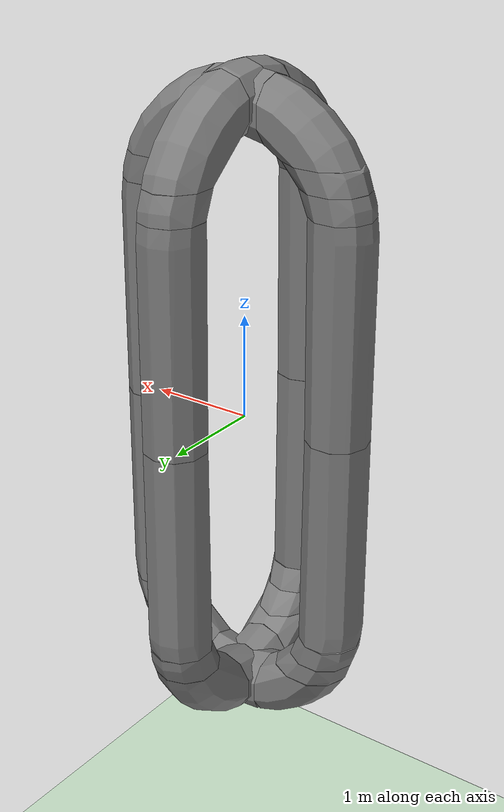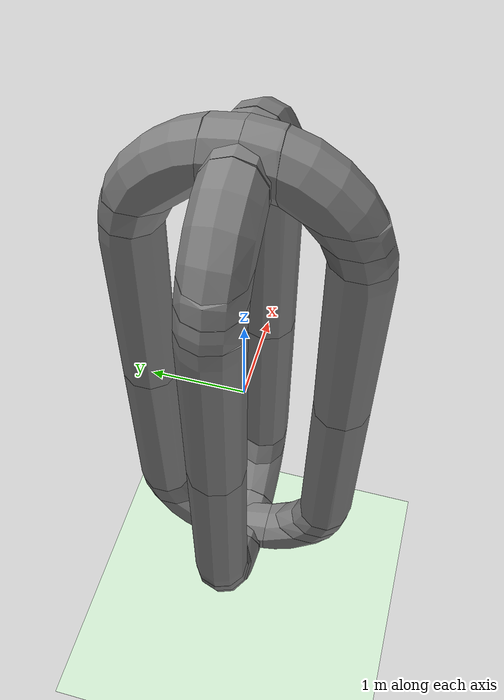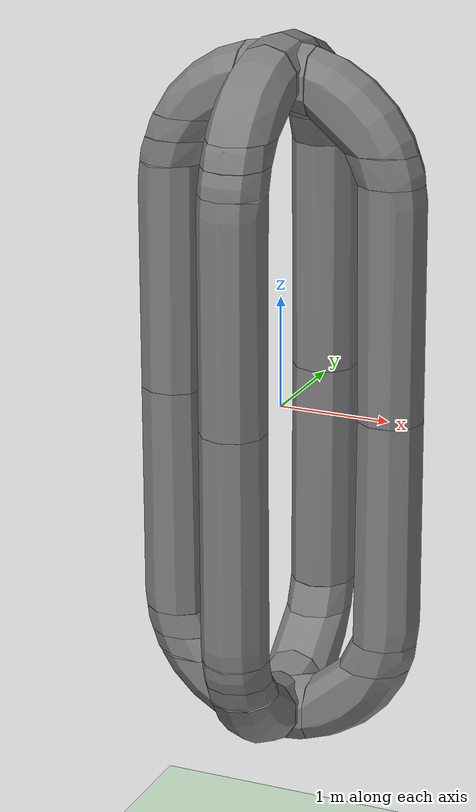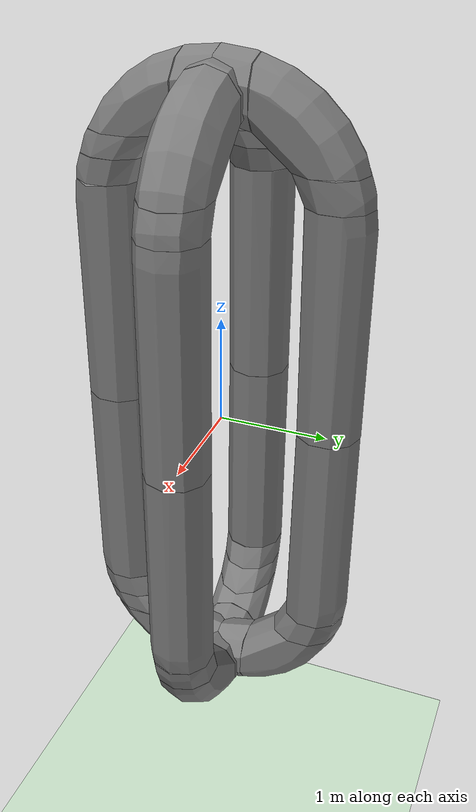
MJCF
<mujoco model="unnamed_model">
  <option timestep="0.01667" integrator="RK4"/>
  <size njmax="10000" nconmax="4000"/>
  <default>
    <default class="/"/>
  </default>
  <asset>
    <mesh name="torus" class="/" file="torus_vhacd2-fcd51a57eb6f9306c5df05297af02341f96004e6.stl"/>
    <mesh name="torus0" class="/" file="convex_0_lab-5ad5a1dada27922ab7aa6d90e5f669d3b0169b27.stl"/>
    <mesh name="torus1" class="/" file="convex_1_lab-b91990515963df7f713443cbdd0c6e6e26523674.stl"/>
    <mesh name="torus2" class="/" file="convex_2_lab-6afbd53704953fb2ccea2e98433aee496033c09c.stl"/>
    <mesh name="torus3" class="/" file="convex_3_lab-34599b5e1e2201f42be2f99e3a9c1d39ff4d4f51.stl"/>
    <mesh name="torus4" class="/" file="convex_4_lab-e42b2bad269f543d276a22bdc799bb36b1142791.stl"/>
    <mesh name="torus5" class="/" file="convex_5_lab-2c0e43f5693051559657a50cddade501db72c649.stl"/>
    <mesh name="torus6" class="/" file="convex_6_lab-72d75dbb87d0d91382d4b558bfde88130c08970e.stl"/>
    <mesh name="torus7" class="/" file="convex_7_lab-5dcb10c25a2016340e0a50dc0c4c1930200c3e91.stl"/>
    <mesh name="torus8" class="/" file="convex_8_lab-db3bf152e330540b89be82a8664d14920e51ed3b.stl"/>
    <mesh name="torus9" class="/" file="convex_9_lab-dbc65aeebb95d37c06ee96cfcf049852f7addcd0.stl"/>
    <mesh name="torus10" class="/" file="convex_10_lab-493fb0703430246fcbd7124f02e78bbffd45a8cb.stl"/>
    <mesh name="torus11" class="/" file="convex_11_lab-12ac0f3f0279aa4594f1d602c161dc233a22c8f9.stl"/>
    <mesh name="torus12" class="/" file="convex_12_lab-0c10448ed035bcb393f2ece26af7285177527c88.stl"/>
    <mesh name="torus13" class="/" file="convex_13_lab-6df21f70f017bc4a66256f0deb23d63c2dcd135d.stl"/>
    <mesh name="torus14" class="/" file="convex_14_lab-fd3ee6ab12fcaf94b688193bb48e83d598fcd0f3.stl"/>
    <mesh name="torus15" class="/" file="convex_15_lab-730b25b47d9e151f5227446629b246eca1f5f08d.stl"/>
    <mesh name="torus16" class="/" file="convex_16_lab-b5c1ad0561b0bd433db529c6b9091de2bf0428d9.stl"/>
    <mesh name="torus17" class="/" file="convex_17_lab-9257e6691b9442eac0623d5a60378a34104b1fa8.stl"/>
    <texture name="//unnamed_texture_0" type="skybox" builtin="gradient" rgb1="1 1 1" rgb2="0 0 0" width="1000" height="100"/>
    <texture name="texplane" type="2d" builtin="checker" rgb1="0 0 0" rgb2="0.80000000000000004 0.80000000000000004 0.80000000000000004" width="100" height="100"/>
    <material name="MatPlane" class="/" texture="texplane" texrepeat="30 30" specular="1.0" shininess="1.0" reflectance="0.5"/>
  </asset>
  <worldbody>
    <light name="//unnamed_light_0" class="/" directional="true" pos="0 0 1.3" dir="-0 0 -1.3" cutoff="100.0" exponent="1.0" diffuse="1 1 1" specular="0.10000000000000001 0.10000000000000001 0.10000000000000001"/>
    <geom name="floor" class="/" type="plane" conaffinity="1" condim="3" size="40 40 40" material="MatPlane" rgba="0.80000000000000004 0.90000000000000002 0.80000000000000004 1" pos="-0 0 -5"/>
    <body name="body0" pos="-0 0 0.086900000000000005" quat="0.70710700000000004 0 0 0.70710700000000004">
      <geom name="//unnamed_geom_1" class="/" type="mesh" mesh="torus0"/>
      <geom name="//unnamed_geom_2" class="/" type="mesh" mesh="torus1"/>
      <geom name="//unnamed_geom_3" class="/" type="mesh" mesh="torus2"/>
      <geom name="//unnamed_geom_4" class="/" type="mesh" mesh="torus3"/>
      <geom name="//unnamed_geom_5" class="/" type="mesh" mesh="torus4"/>
      <geom name="//unnamed_geom_6" class="/" type="mesh" mesh="torus5"/>
      <geom name="//unnamed_geom_7" class="/" type="mesh" mesh="torus6"/>
      <geom name="//unnamed_geom_8" class="/" type="mesh" mesh="torus7"/>
      <geom name="//unnamed_geom_9" class="/" type="mesh" mesh="torus8"/>
      <geom name="//unnamed_geom_10" class="/" type="mesh" mesh="torus9"/>
      <geom name="//unnamed_geom_11" class="/" type="mesh" mesh="torus10"/>
      <geom name="//unnamed_geom_12" class="/" type="mesh" mesh="torus11"/>
      <geom name="//unnamed_geom_13" class="/" type="mesh" mesh="torus12"/>
      <geom name="//unnamed_geom_14" class="/" type="mesh" mesh="torus13"/>
      <geom name="//unnamed_geom_15" class="/" type="mesh" mesh="torus14"/>
      <geom name="//unnamed_geom_16" class="/" type="mesh" mesh="torus15"/>
      <geom name="//unnamed_geom_17" class="/" type="mesh" mesh="torus16"/>
      <geom name="//unnamed_geom_18" class="/" type="mesh" mesh="torus17"/>
      <inertial pos="-0 0 0.086900000000000005" mass="0.0"/>
    </body>
    <body name="body1" pos="-0 0 0.035600000000000014" quat="1 0 0 0">
      <geom name="//unnamed_geom_19" class="/" type="mesh" mesh="torus0"/>
      <geom name="//unnamed_geom_20" class="/" type="mesh" mesh="torus1"/>
      <geom name="//unnamed_geom_21" class="/" type="mesh" mesh="torus2"/>
      <geom name="//unnamed_geom_22" class="/" type="mesh" mesh="torus3"/>
      <geom name="//unnamed_geom_23" class="/" type="mesh" mesh="torus4"/>
      <geom name="//unnamed_geom_24" class="/" type="mesh" mesh="torus5"/>
      <geom name="//unnamed_geom_25" class="/" type="mesh" mesh="torus6"/>
      <geom name="//unnamed_geom_26" class="/" type="mesh" mesh="torus7"/>
      <geom name="//unnamed_geom_27" class="/" type="mesh" mesh="torus8"/>
      <geom name="//unnamed_geom_28" class="/" type="mesh" mesh="torus9"/>
      <geom name="//unnamed_geom_29" class="/" type="mesh" mesh="torus10"/>
      <geom name="//unnamed_geom_30" class="/" type="mesh" mesh="torus11"/>
      <geom name="//unnamed_geom_31" class="/" type="mesh" mesh="torus12"/>
      <geom name="//unnamed_geom_32" class="/" type="mesh" mesh="torus13"/>
      <geom name="//unnamed_geom_33" class="/" type="mesh" mesh="torus14"/>
      <geom name="//unnamed_geom_34" class="/" type="mesh" mesh="torus15"/>
      <geom name="//unnamed_geom_35" class="/" type="mesh" mesh="torus16"/>
      <geom name="//unnamed_geom_36" class="/" type="mesh" mesh="torus17"/>
      <joint name="//unnamed_joint_0" class="/" type="free"/>
    </body>
  </worldbody>
</mujoco>
